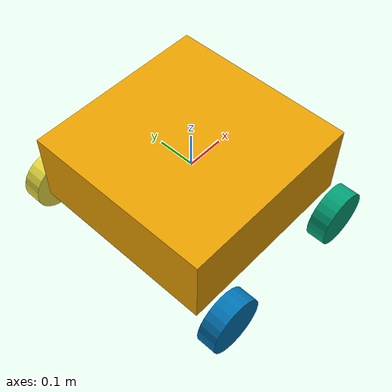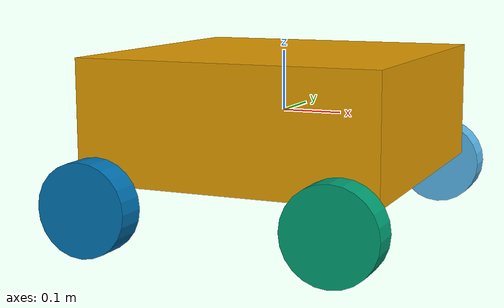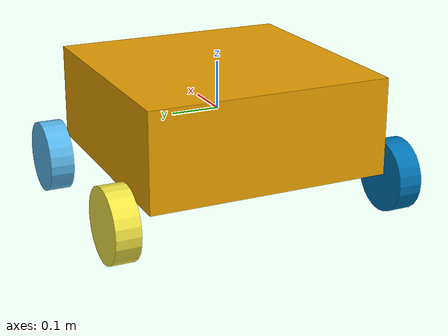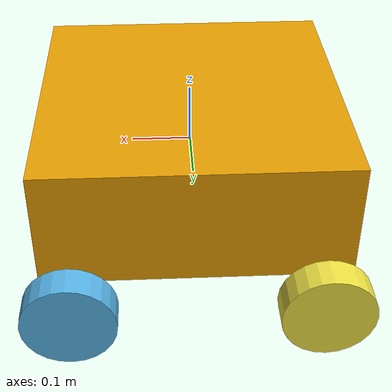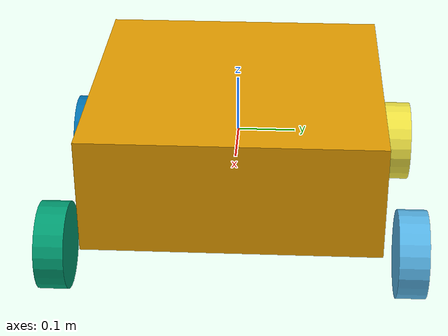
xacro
<?xml version="1.0"?>
<robot name="roscontrol" xmlns:xacro="http://ros.org/wiki/xacro">

    <xacro:property name="yaml_file" value="$(find mobile_robot)/config/paramlist.yaml" />
    <xacro:property name="base_latt" value="${load_yaml(yaml_file)['base_latt']}"/>
    <xacro:property name="base_long" value="${load_yaml(yaml_file)['base_long']}"/>
    <xacro:property name="robot_length" value="0.5"/>
    <xacro:property name="robot_width" value="0.5"/>
    <xacro:property name="robot_height" value="0.2"/>
    <xacro:property name="wheeldiam" value="0.15"/>
    <xacro:property name="wheel_len" value="0.05"/>
    <xacro:property name="pi" value="3.14159265359"/>
    <xacro:property name="base_mass" value="15"/>
    <xacro:property name="robot_wheel_mass" value="5"/>

    <material name="blue">
        <color rgba="0 0 0.8 1"/>
    </material>

    <material name="black">
        <color rgba="0 0 0 1"/>
    </material>

    <material name="white">
        <color rgba="1 1 1 1"/>
    </material>

    <xacro:macro name="default_inertial" params="mass">
        <inertial>
            <mass value="${mass}"/>
            <inertia ixx="1.0" ixy="0.0" ixz="0.0"
                     iyy="1.0" iyz="0.0"
                     izz="1.0"/>
        </inertial>
    </xacro:macro>

    <link name="base_link">
        <visual>
            <geometry>
                <box size="${robot_length} ${robot_width} ${robot_height}"/>
            </geometry>
        </visual>
        <collision>
            <geometry>
                <box size="${robot_length} ${robot_width} ${robot_height}"/>
            </geometry>
        </collision>
        <inertial>
            <mass value="${base_mass}"/>
            <origin xyz="0 0 0" rpy=" 0 0 0"/>
            <!-- https://en.wikipedia.org/wiki/List_of_moments_of_inertia -->
            <inertia
      			ixx="0.3625" ixy="0"           ixz="0"
      			                  iyy="0.3625" iyz="0"
      			                                    izz="0.625"
      		/>
        </inertial>
    </link>

    <xacro:macro name="wheel" params="prefix suffix x_reflect y_reflect">

        <link name="${prefix}_${suffix}_wheel">
            <visual>
                <origin xyz="0 0 0" rpy="0 1.5707 1.5707"/>
                <geometry>
                    <cylinder radius="${wheeldiam/2}" length="${wheel_len}"/>
                </geometry>
            </visual>
            <collision>
                <origin xyz="0 0 0" rpy="0 1.5707 1.5707"/>
                <geometry>
                    <cylinder radius="${wheeldiam/2}" length="${wheel_len}"/>
                </geometry>
            </collision>
            <inertial>
                <mass value="${robot_wheel_mass}"/>
                <origin xyz="0 0 0" rpy="0 1.5707 1.5707"/>
                    <inertia
                        ixx="0.1" ixy="0.0" ixz="0.0"
                                  iyy="0.1" iyz="0.0"
                                            izz="0.1"
                    />
		    </inertial>
        </link>

        <joint name="${prefix}_${suffix}_wheel_joint" type="continuous">
            <axis xyz="0 1 0" rpy="0 0 0"/>
            <parent link="base_link"/>
            <child link="${prefix}_${suffix}_wheel"/>
            <origin xyz="${0.2*x_reflect} ${0.3*y_reflect} -${wheeldiam/2+.05}" rpy="0 0 0"/>
            <limit effort="10000" velocity="1000"/>
            <dynamics damping="1.0" friction="0.8"/>
        </joint>

    </xacro:macro>

    <xacro:wheel prefix="left" suffix="front" x_reflect="1" y_reflect="1"/>
    <xacro:wheel prefix="right" suffix="front" x_reflect="1" y_reflect="-1"/>
    <xacro:wheel prefix="left" suffix="back" x_reflect="-1" y_reflect="1"/>
    <xacro:wheel prefix="right" suffix="back" x_reflect="-1" y_reflect="-1"/>

    <gazebo>
        <plugin name="gps_sim" filename="libhector_gazebo_ros_gps.so">
            <alwaysOn>1</alwaysOn>
            <updateRate>10.0</updateRate>
            <bodyName>base_link</bodyName>
            <frameId>base_link</frameId>
            <topicName>mobile_robot_gps/fix</topicName>
            <velocityTopicName>mobile_robot_gps/fix_velocity</velocityTopicName>

            <offset>0 0 0</offset>
            <drift>0 0 0</drift>
            <gaussianNoise>0.05 0.05 0.05</gaussianNoise>
            <velocityDrift>0.0001 0.0001 0.0001</velocityDrift>
            <velocityOffset>0 0 0</velocityOffset>
            <velocityGaussianNoise>0.05 0.05 0.05</velocityGaussianNoise>

            <referenceLatitude>${base_latt}</referenceLatitude>
            <referenceLongitude>${base_long}</referenceLongitude>
        </plugin>
    </gazebo>

    <gazebo>
        <plugin name="mag_sim" filename="libhector_gazebo_ros_magnetic.so">
            <updateRate>10.0</updateRate>
            <bodyName>base_link</bodyName>
            <frameId>base_link</frameId>
            <topicName>mobile_robot_mag</topicName>
            <offset>0 0 0</offset>
            <drift>0 0 0</drift>
            <gaussianNoise>0.05 0.05 0.05</gaussianNoise>
            <referenceHeading>90.0</referenceHeading>
        </plugin>
    </gazebo>

    <gazebo>
    <plugin name="imu_plugin" filename="libgazebo_ros_imu.so">
      <alwaysOn>true</alwaysOn>
      <bodyName>base_link</bodyName>
      <topicName>mobile_robot_imu</topicName>
      <serviceName>imu_service</serviceName>
      <gaussianNoise>0.0</gaussianNoise>
      <updateRate>20.0</updateRate>
        <initialOrientationAsReference>false</initialOrientationAsReference>
        <xyzOffset>0 0 0</xyzOffset>
        <rpyOffset>0 0 0</rpyOffset>
    </plugin>
  </gazebo>

   <gazebo>
  <plugin name="skid_steer_drive_controller" filename="libgazebo_ros_skid_steer_drive.so">
    <updateRate>10.0</updateRate>
    <robotNamespace>/</robotNamespace>
    <leftFrontJoint>left_front_wheel_joint</leftFrontJoint>
    <rightFrontJoint>right_front_wheel_joint</rightFrontJoint>
    <leftRearJoint>left_back_wheel_joint</leftRearJoint>
    <rightRearJoint>right_back_wheel_joint</rightRearJoint>
    <wheelSeparation>0.4</wheelSeparation>
    <wheelDiameter>0.15</wheelDiameter>
    <robotBaseFrame>base_link</robotBaseFrame>
    <torque>10</torque>
    <topicName>cmd_vel</topicName>
    <broadcastTF>true</broadcastTF>
    <odometryTopic>mobile_robot/odom</odometryTopic>

    <covariance_x>0.0001</covariance_x>
    <covariance_y>0.0001</covariance_y>
    <covariance_yaw>0.01</covariance_yaw>
  </plugin>
</gazebo>

</robot>
